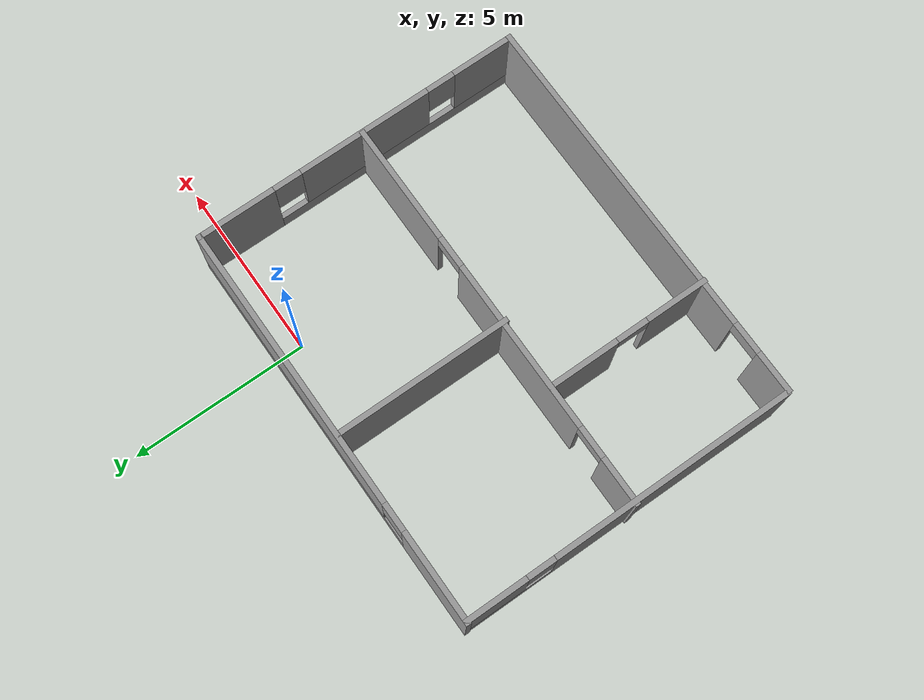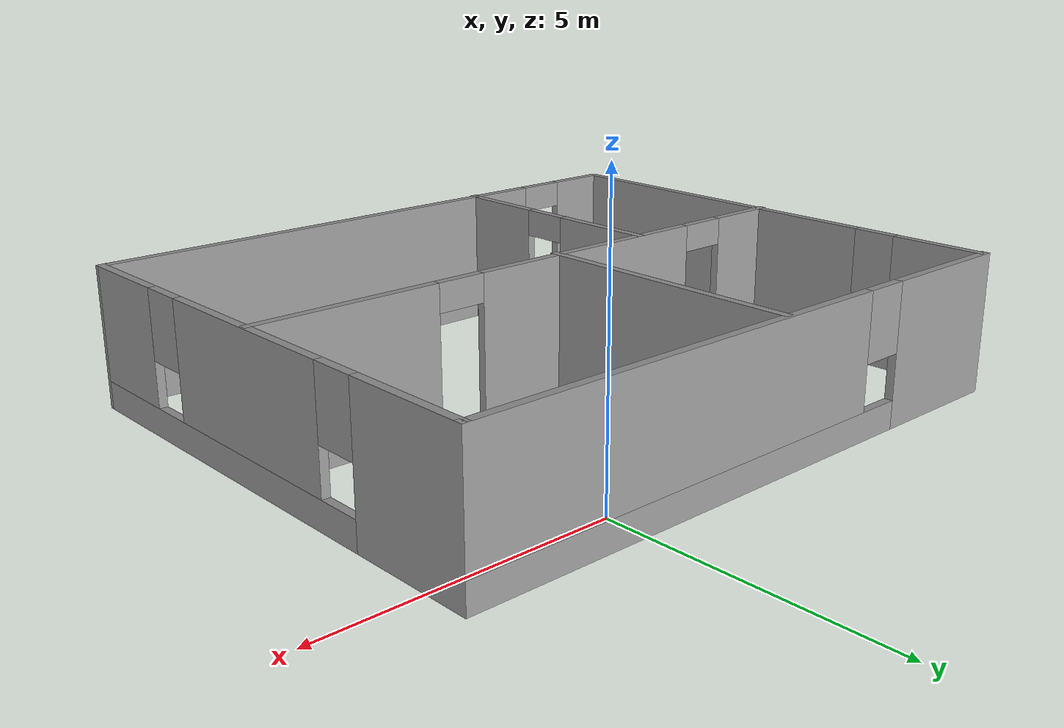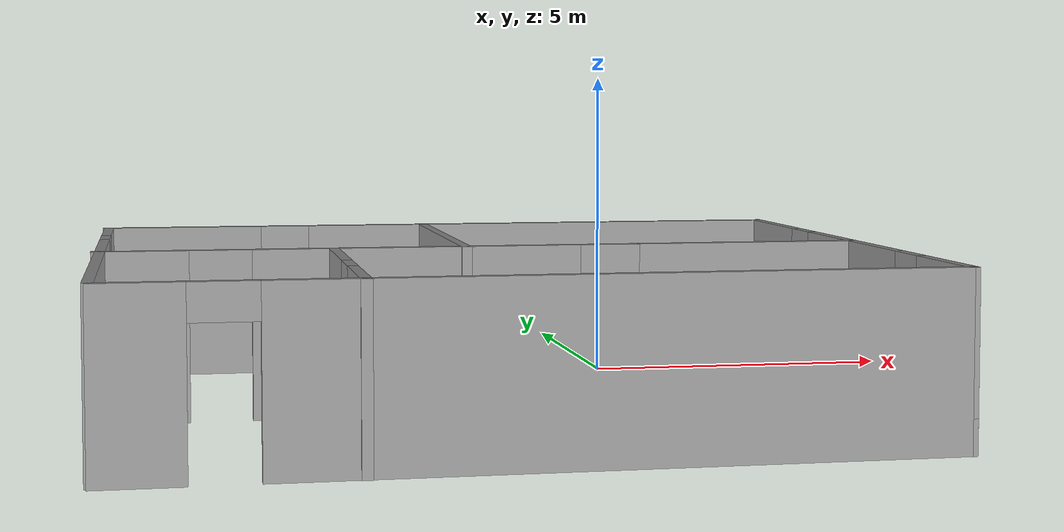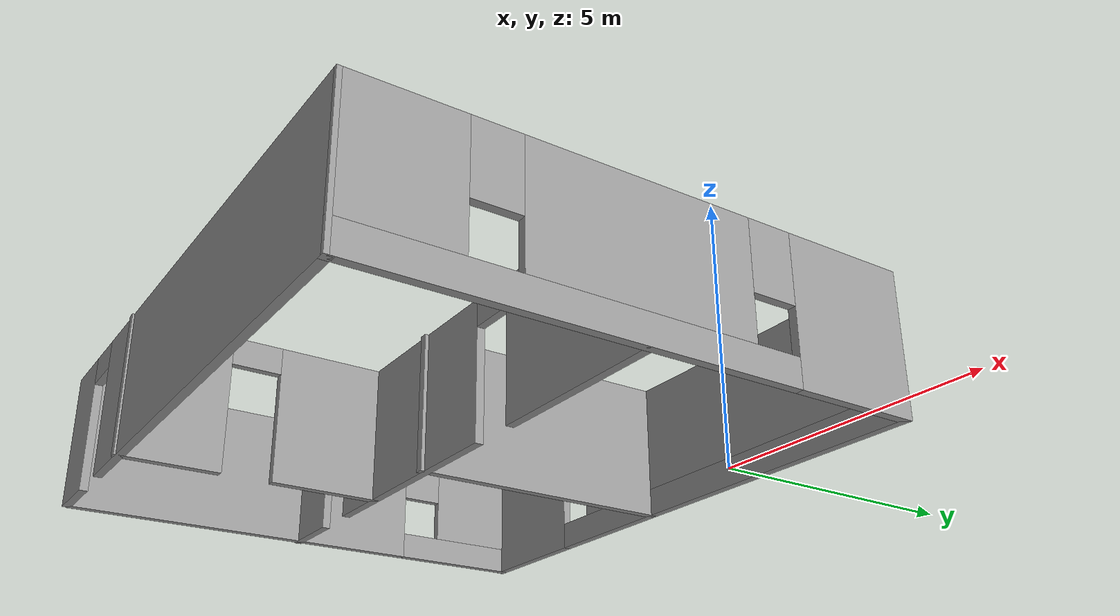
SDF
<?xml version='1.0'?>
<sdf version='1.7'>
  <model name='Untitled3'>
    <pose>-2.60961 -3.99909 0 0 -0 0</pose>
    <link name='Wall_10'>
      <pose>-0.015533 -0.114109 0 0 -0 0</pose>
      <visual name='Wall_10_Visual_0'>
        <pose>-5.05539 0 1.25 0 -0 0</pose>
        <geometry>
          <box>
            <size>1.38922 0.15 2.5</size>
          </box>
        </geometry>
        <material>
          <script>
            <uri>file://media/materials/scripts/gazebo.material</uri>
            <name>Gazebo/Grey</name>
          </script>
          <ambient>1 1 1 1</ambient>
        </material>
        <meta>
          <layer>0</layer>
        </meta>
      </visual>
      <collision name='Wall_10_Collision_0'>
        <geometry>
          <box>
            <size>1.38922 0.15 2.5</size>
          </box>
        </geometry>
        <pose>-5.05539 0 1.25 0 -0 0</pose>
      </collision>
      <visual name='Wall_10_Visual_1'>
        <pose>-1.02112 0 1.25 0 -0 0</pose>
        <geometry>
          <box>
            <size>4.87932 0.15 2.5</size>
          </box>
        </geometry>
        <material>
          <script>
            <uri>file://media/materials/scripts/gazebo.material</uri>
            <name>Gazebo/Grey</name>
          </script>
          <ambient>1 1 1 1</ambient>
        </material>
        <meta>
          <layer>0</layer>
        </meta>
      </visual>
      <collision name='Wall_10_Collision_1'>
        <geometry>
          <box>
            <size>4.87932 0.15 2.5</size>
          </box>
        </geometry>
        <pose>-1.02112 0 1.25 0 -0 0</pose>
      </collision>
      <visual name='Wall_10_Visual_2'>
        <pose>4.03427 0 1.25 0 -0 0</pose>
        <geometry>
          <box>
            <size>3.43146 0.15 2.5</size>
          </box>
        </geometry>
        <material>
          <script>
            <uri>file://media/materials/scripts/gazebo.material</uri>
            <name>Gazebo/Grey</name>
          </script>
          <ambient>1 1 1 1</ambient>
        </material>
        <meta>
          <layer>0</layer>
        </meta>
      </visual>
      <collision name='Wall_10_Collision_2'>
        <geometry>
          <box>
            <size>3.43146 0.15 2.5</size>
          </box>
        </geometry>
        <pose>4.03427 0 1.25 0 -0 0</pose>
      </collision>
      <visual name='Wall_10_Visual_3'>
        <pose>-3.91079 0 2.25 0 -0 0</pose>
        <geometry>
          <box>
            <size>0.9 0.15 0.5</size>
          </box>
        </geometry>
        <material>
          <script>
            <uri>file://media/materials/scripts/gazebo.material</uri>
            <name>Gazebo/Grey</name>
          </script>
          <ambient>1 1 1 1</ambient>
        </material>
        <meta>
          <layer>0</layer>
        </meta>
      </visual>
      <collision name='Wall_10_Collision_3'>
        <geometry>
          <box>
            <size>0.9 0.15 0.5</size>
          </box>
        </geometry>
        <pose>-3.91079 0 2.25 0 -0 0</pose>
      </collision>
      <visual name='Wall_10_Visual_4'>
        <pose>1.86854 0 2.25 0 -0 0</pose>
        <geometry>
          <box>
            <size>0.9 0.15 0.5</size>
          </box>
        </geometry>
        <material>
          <script>
            <uri>file://media/materials/scripts/gazebo.material</uri>
            <name>Gazebo/Grey</name>
          </script>
          <ambient>1 1 1 1</ambient>
        </material>
        <meta>
          <layer>0</layer>
        </meta>
      </visual>
      <collision name='Wall_10_Collision_4'>
        <geometry>
          <box>
            <size>0.9 0.15 0.5</size>
          </box>
        </geometry>
        <pose>1.86854 0 2.25 0 -0 0</pose>
      </collision>
    </link>
    <link name='Wall_14'>
      <pose>-2.28377 -2.41411 0 0 -0 -1.5708</pose>
      <visual name='Wall_14_Visual_0'>
        <pose>-1.3458 0 1.25 0 -0 0</pose>
        <geometry>
          <box>
            <size>2.0584 0.15 2.5</size>
          </box>
        </geometry>
        <material>
          <script>
            <uri>file://media/materials/scripts/gazebo.material</uri>
            <name>Gazebo/Grey</name>
          </script>
          <ambient>1 1 1 1</ambient>
        </material>
        <meta>
          <layer>0</layer>
        </meta>
      </visual>
      <collision name='Wall_14_Collision_0'>
        <geometry>
          <box>
            <size>2.0584 0.15 2.5</size>
          </box>
        </geometry>
        <pose>-1.3458 0 1.25 0 -0 0</pose>
      </collision>
      <visual name='Wall_14_Visual_1'>
        <pose>1.4792 0 1.25 0 -0 0</pose>
        <geometry>
          <box>
            <size>1.7916 0.15 2.5</size>
          </box>
        </geometry>
        <material>
          <script>
            <uri>file://media/materials/scripts/gazebo.material</uri>
            <name>Gazebo/Grey</name>
          </script>
          <ambient>1 1 1 1</ambient>
        </material>
        <meta>
          <layer>0</layer>
        </meta>
      </visual>
      <collision name='Wall_14_Collision_1'>
        <geometry>
          <box>
            <size>1.7916 0.15 2.5</size>
          </box>
        </geometry>
        <pose>1.4792 0 1.25 0 -0 0</pose>
      </collision>
      <visual name='Wall_14_Visual_2'>
        <pose>0.1334 0 2.25 0 -0 0</pose>
        <geometry>
          <box>
            <size>0.9 0.15 0.5</size>
          </box>
        </geometry>
        <material>
          <script>
            <uri>file://media/materials/scripts/gazebo.material</uri>
            <name>Gazebo/Grey</name>
          </script>
          <ambient>1 1 1 1</ambient>
        </material>
        <meta>
          <layer>0</layer>
        </meta>
      </visual>
      <collision name='Wall_14_Collision_2'>
        <geometry>
          <box>
            <size>0.9 0.15 0.5</size>
          </box>
        </geometry>
        <pose>0.1334 0 2.25 0 -0 0</pose>
      </collision>
    </link>
    <link name='Wall_16'>
      <collision name='Wall_16_Collision'>
        <geometry>
          <box>
            <size>5 0.15 2.5</size>
          </box>
        </geometry>
        <pose>0 0 1.25 0 -0 0</pose>
      </collision>
      <visual name='Wall_16_Visual'>
        <pose>0 0 1.25 0 -0 0</pose>
        <geometry>
          <box>
            <size>5 0.15 2.5</size>
          </box>
        </geometry>
        <material>
          <script>
            <uri>file://media/materials/scripts/gazebo.material</uri>
            <name>Gazebo/Grey</name>
          </script>
          <ambient>1 1 1 1</ambient>
        </material>
        <meta>
          <layer>0</layer>
        </meta>
      </visual>
      <pose>-0.330039 2.24259 0 0 -0 -1.5708</pose>
    </link>
    <link name='Wall_5'>
      <pose>0.015131 4.71411 0 0 -0 0</pose>
      <visual name='Wall_5_Visual_0'>
        <pose>-4.43738 0 1.25 0 -0 0</pose>
        <geometry>
          <box>
            <size>2.62525 0.15 2.5</size>
          </box>
        </geometry>
        <material>
          <script>
            <uri>file://media/materials/scripts/gazebo.material</uri>
            <name>Gazebo/Grey</name>
          </script>
          <ambient>1 1 1 1</ambient>
        </material>
        <meta>
          <layer>0</layer>
        </meta>
      </visual>
      <collision name='Wall_5_Collision_0'>
        <geometry>
          <box>
            <size>2.62525 0.15 2.5</size>
          </box>
        </geometry>
        <pose>-4.43738 0 1.25 0 -0 0</pose>
      </collision>
      <visual name='Wall_5_Visual_1'>
        <pose>1.31262 0 0.25 0 -0 0</pose>
        <geometry>
          <box>
            <size>8.87475 0.15 0.5</size>
          </box>
        </geometry>
        <material>
          <script>
            <uri>file://media/materials/scripts/gazebo.material</uri>
            <name>Gazebo/Grey</name>
          </script>
          <ambient>1 1 1 1</ambient>
        </material>
        <meta>
          <layer>0</layer>
        </meta>
      </visual>
      <collision name='Wall_5_Collision_1'>
        <geometry>
          <box>
            <size>8.87475 0.15 0.5</size>
          </box>
        </geometry>
        <pose>1.31262 0 0.25 0 -0 0</pose>
      </collision>
      <visual name='Wall_5_Visual_2'>
        <pose>1.71263 0 1.5 0 -0 0</pose>
        <geometry>
          <box>
            <size>8.07475 0.15 2</size>
          </box>
        </geometry>
        <material>
          <script>
            <uri>file://media/materials/scripts/gazebo.material</uri>
            <name>Gazebo/Grey</name>
          </script>
          <ambient>1 1 1 1</ambient>
        </material>
        <meta>
          <layer>0</layer>
        </meta>
      </visual>
      <collision name='Wall_5_Collision_2'>
        <geometry>
          <box>
            <size>8.07475 0.15 2</size>
          </box>
        </geometry>
        <pose>1.71263 0 1.5 0 -0 0</pose>
      </collision>
      <visual name='Wall_5_Visual_3'>
        <pose>-2.72475 0 1.9 0 -0 0</pose>
        <geometry>
          <box>
            <size>0.8 0.15 1.2</size>
          </box>
        </geometry>
        <material>
          <script>
            <uri>file://media/materials/scripts/gazebo.material</uri>
            <name>Gazebo/Grey</name>
          </script>
          <ambient>1 1 1 1</ambient>
        </material>
        <meta>
          <layer>0</layer>
        </meta>
      </visual>
      <collision name='Wall_5_Collision_3'>
        <geometry>
          <box>
            <size>0.8 0.15 1.2</size>
          </box>
        </geometry>
        <pose>-2.72475 0 1.9 0 -0 0</pose>
      </collision>
    </link>
    <link name='Wall_6'>
      <pose>5.69013 0.039108 0 0 -0 -1.5708</pose>
      <visual name='Wall_6_Visual_0'>
        <pose>-3.62384 0 1.25 0 -0 0</pose>
        <geometry>
          <box>
            <size>2.25232 0.15 2.5</size>
          </box>
        </geometry>
        <material>
          <script>
            <uri>file://media/materials/scripts/gazebo.material</uri>
            <name>Gazebo/Grey</name>
          </script>
          <ambient>1 1 1 1</ambient>
        </material>
        <meta>
          <layer>0</layer>
        </meta>
      </visual>
      <collision name='Wall_6_Collision_0'>
        <geometry>
          <box>
            <size>2.25232 0.15 2.5</size>
          </box>
        </geometry>
        <pose>-3.62384 0 1.25 0 -0 0</pose>
      </collision>
      <visual name='Wall_6_Visual_1'>
        <pose>1.12616 0 0.25 0 -0 0</pose>
        <geometry>
          <box>
            <size>7.24768 0.15 0.5</size>
          </box>
        </geometry>
        <material>
          <script>
            <uri>file://media/materials/scripts/gazebo.material</uri>
            <name>Gazebo/Grey</name>
          </script>
          <ambient>1 1 1 1</ambient>
        </material>
        <meta>
          <layer>0</layer>
        </meta>
      </visual>
      <collision name='Wall_6_Collision_1'>
        <geometry>
          <box>
            <size>7.24768 0.15 0.5</size>
          </box>
        </geometry>
        <pose>1.12616 0 0.25 0 -0 0</pose>
      </collision>
      <visual name='Wall_6_Visual_2'>
        <pose>0.214052 0 1.5 0 -0 0</pose>
        <geometry>
          <box>
            <size>3.82346 0.15 2</size>
          </box>
        </geometry>
        <material>
          <script>
            <uri>file://media/materials/scripts/gazebo.material</uri>
            <name>Gazebo/Grey</name>
          </script>
          <ambient>1 1 1 1</ambient>
        </material>
        <meta>
          <layer>0</layer>
        </meta>
      </visual>
      <collision name='Wall_6_Collision_2'>
        <geometry>
          <box>
            <size>3.82346 0.15 2</size>
          </box>
        </geometry>
        <pose>0.214052 0 1.5 0 -0 0</pose>
      </collision>
      <visual name='Wall_6_Visual_3'>
        <pose>3.83789 0 1.5 0 -0 0</pose>
        <geometry>
          <box>
            <size>1.82422 0.15 2</size>
          </box>
        </geometry>
        <material>
          <script>
            <uri>file://media/materials/scripts/gazebo.material</uri>
            <name>Gazebo/Grey</name>
          </script>
          <ambient>1 1 1 1</ambient>
        </material>
        <meta>
          <layer>0</layer>
        </meta>
      </visual>
      <collision name='Wall_6_Collision_3'>
        <geometry>
          <box>
            <size>1.82422 0.15 2</size>
          </box>
        </geometry>
        <pose>3.83789 0 1.5 0 -0 0</pose>
      </collision>
      <visual name='Wall_6_Visual_4'>
        <pose>-2.09768 0 1.9 0 -0 0</pose>
        <geometry>
          <box>
            <size>0.8 0.15 1.2</size>
          </box>
        </geometry>
        <material>
          <script>
            <uri>file://media/materials/scripts/gazebo.material</uri>
            <name>Gazebo/Grey</name>
          </script>
          <ambient>1 1 1 1</ambient>
        </material>
        <meta>
          <layer>0</layer>
        </meta>
      </visual>
      <collision name='Wall_6_Collision_4'>
        <geometry>
          <box>
            <size>0.8 0.15 1.2</size>
          </box>
        </geometry>
        <pose>-2.09768 0 1.9 0 -0 0</pose>
      </collision>
      <visual name='Wall_6_Visual_5'>
        <pose>2.52578 0 1.9 0 -0 0</pose>
        <geometry>
          <box>
            <size>0.8 0.15 1.2</size>
          </box>
        </geometry>
        <material>
          <script>
            <uri>file://media/materials/scripts/gazebo.material</uri>
            <name>Gazebo/Grey</name>
          </script>
          <ambient>1 1 1 1</ambient>
        </material>
        <meta>
          <layer>0</layer>
        </meta>
      </visual>
      <collision name='Wall_6_Collision_5'>
        <geometry>
          <box>
            <size>0.8 0.15 1.2</size>
          </box>
        </geometry>
        <pose>2.52578 0 1.9 0 -0 0</pose>
      </collision>
    </link>
    <link name='Wall_7'>
      <pose>0.042219 -4.66631 0 0 -0 -3.13621</pose>
      <visual name='Wall_7_Visual_0'>
        <pose>-1.05611 0 1.25 0 -0 0</pose>
        <geometry>
          <box>
            <size>9.33376 0.15 2.5</size>
          </box>
        </geometry>
        <material>
          <script>
            <uri>file://media/materials/scripts/gazebo.material</uri>
            <name>Gazebo/Grey</name>
          </script>
          <ambient>1 1 1 1</ambient>
        </material>
        <meta>
          <layer>0</layer>
        </meta>
      </visual>
      <collision name='Wall_7_Collision_0'>
        <geometry>
          <box>
            <size>9.33376 0.15 2.5</size>
          </box>
        </geometry>
        <pose>-1.05611 0 1.25 0 -0 0</pose>
      </collision>
      <visual name='Wall_7_Visual_1'>
        <pose>5.11688 0 1.25 0 -0 0</pose>
        <geometry>
          <box>
            <size>1.21222 0.15 2.5</size>
          </box>
        </geometry>
        <material>
          <script>
            <uri>file://media/materials/scripts/gazebo.material</uri>
            <name>Gazebo/Grey</name>
          </script>
          <ambient>1 1 1 1</ambient>
        </material>
        <meta>
          <layer>0</layer>
        </meta>
      </visual>
      <collision name='Wall_7_Collision_1'>
        <geometry>
          <box>
            <size>1.21222 0.15 2.5</size>
          </box>
        </geometry>
        <pose>5.11688 0 1.25 0 -0 0</pose>
      </collision>
      <visual name='Wall_7_Visual_2'>
        <pose>4.06077 0 2.25 0 -0 0</pose>
        <geometry>
          <box>
            <size>0.9 0.15 0.5</size>
          </box>
        </geometry>
        <material>
          <script>
            <uri>file://media/materials/scripts/gazebo.material</uri>
            <name>Gazebo/Grey</name>
          </script>
          <ambient>1 1 1 1</ambient>
        </material>
        <meta>
          <layer>0</layer>
        </meta>
      </visual>
      <collision name='Wall_7_Collision_2'>
        <geometry>
          <box>
            <size>0.9 0.15 0.5</size>
          </box>
        </geometry>
        <pose>4.06077 0 2.25 0 -0 0</pose>
      </collision>
    </link>
    <link name='Wall_8'>
      <pose>-5.63611 0.039108 0 0 -0 1.5708</pose>
      <visual name='Wall_8_Visual_0'>
        <pose>-1.29803 0 1.25 0 -0 0</pose>
        <geometry>
          <box>
            <size>6.90394 0.15 2.5</size>
          </box>
        </geometry>
        <material>
          <script>
            <uri>file://media/materials/scripts/gazebo.material</uri>
            <name>Gazebo/Grey</name>
          </script>
          <ambient>1 1 1 1</ambient>
        </material>
        <meta>
          <layer>0</layer>
        </meta>
      </visual>
      <collision name='Wall_8_Collision_0'>
        <geometry>
          <box>
            <size>6.90394 0.15 2.5</size>
          </box>
        </geometry>
        <pose>-1.29803 0 1.25 0 -0 0</pose>
      </collision>
      <visual name='Wall_8_Visual_1'>
        <pose>3.45197 0 0.25 0 -0 0</pose>
        <geometry>
          <box>
            <size>2.59606 0.15 0.5</size>
          </box>
        </geometry>
        <material>
          <script>
            <uri>file://media/materials/scripts/gazebo.material</uri>
            <name>Gazebo/Grey</name>
          </script>
          <ambient>1 1 1 1</ambient>
        </material>
        <meta>
          <layer>0</layer>
        </meta>
      </visual>
      <collision name='Wall_8_Collision_1'>
        <geometry>
          <box>
            <size>2.59606 0.15 0.5</size>
          </box>
        </geometry>
        <pose>3.45197 0 0.25 0 -0 0</pose>
      </collision>
      <visual name='Wall_8_Visual_2'>
        <pose>3.85197 0 1.5 0 -0 0</pose>
        <geometry>
          <box>
            <size>1.79606 0.15 2</size>
          </box>
        </geometry>
        <material>
          <script>
            <uri>file://media/materials/scripts/gazebo.material</uri>
            <name>Gazebo/Grey</name>
          </script>
          <ambient>1 1 1 1</ambient>
        </material>
        <meta>
          <layer>0</layer>
        </meta>
      </visual>
      <collision name='Wall_8_Collision_2'>
        <geometry>
          <box>
            <size>1.79606 0.15 2</size>
          </box>
        </geometry>
        <pose>3.85197 0 1.5 0 -0 0</pose>
      </collision>
      <visual name='Wall_8_Visual_3'>
        <pose>2.55394 0 1.9 0 -0 0</pose>
        <geometry>
          <box>
            <size>0.8 0.15 1.2</size>
          </box>
        </geometry>
        <material>
          <script>
            <uri>file://media/materials/scripts/gazebo.material</uri>
            <name>Gazebo/Grey</name>
          </script>
          <ambient>1 1 1 1</ambient>
        </material>
        <meta>
          <layer>0</layer>
        </meta>
      </visual>
      <collision name='Wall_8_Collision_3'>
        <geometry>
          <box>
            <size>0.8 0.15 1.2</size>
          </box>
        </geometry>
        <pose>2.55394 0 1.9 0 -0 0</pose>
      </collision>
    </link>
    <static>1</static>
  </model>
</sdf>
